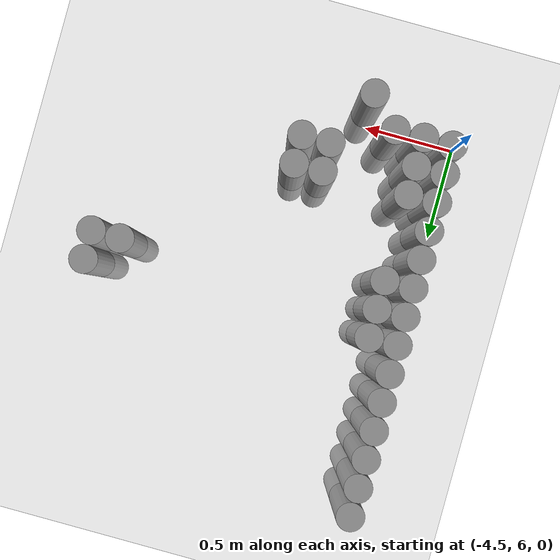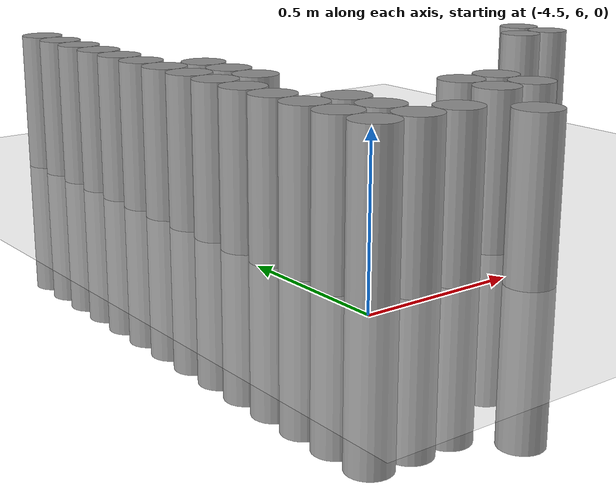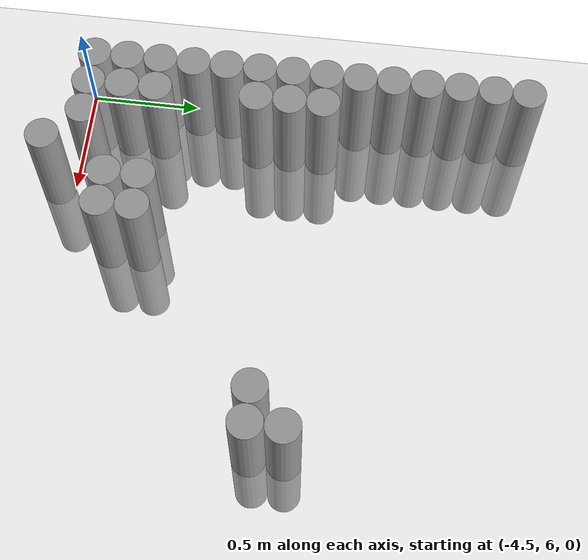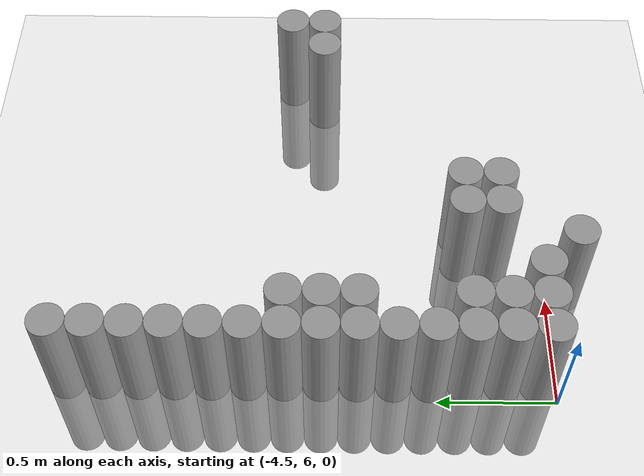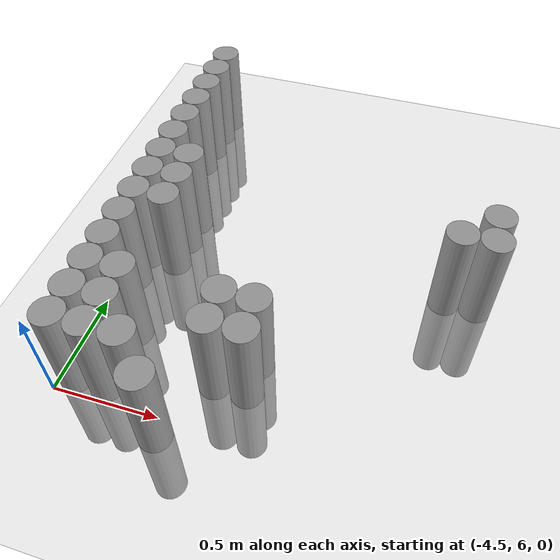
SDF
<sdf version="1.6">
 <world name="default">
  <model name="ground_plane">
   <static>1</static>
   <static>1</static>
   <link name="link">
    <collision name="collision">
     <geometry><plane><normal>0 0 1</normal><size>100 100</size></plane></geometry>
     <surface><friction><ode><mu>100</mu><mu2>50</mu2></ode></friction></surface>
    </collision>
    <visual name="visual">
     <cast_shadows>0</cast_shadows>
     <geometry><plane><normal>0 0 1</normal><size>100 100</size></plane></geometry>
     <material>
      <script><uri>file://media/materials/scripts/gazebo.material</uri><name>Gazebo/Grey</name></script>
     </material>
    </visual>
   </link>
  </model>
  <model name="unit_cylinder_102">
   <static>1</static>
   <pose>-4.425000 6.075000 0.000000 0.000000 0.000000 0.000000</pose>
   <link name="link">
    <inertial>
     <mass>1</mass>
     <inertia><ixx>0.145833</ixx><ixy>0</ixy><ixz>0</ixz><iyy>0.145833</iyy><iyz>0</iyz><izz>0.125</izz></inertia>
    </inertial>
    <collision name="collision">
     <geometry><cylinder><radius>0.075000</radius><length>1</length></cylinder></geometry>
    </collision>
    <visual name="visual">
     <geometry><cylinder><radius>0.075000</radius><length>1</length></cylinder></geometry>
     <material>
      <script><name>Gazebo/Grey</name><uri>file://media/materials/scripts/gazebo.material</uri></script>
     </material>
    </visual>
   </link>
  </model>
  <model name="unit_cylinder_103">
   <static>1</static>
   <pose>-4.425000 6.225000 0.000000 0.000000 0.000000 0.000000</pose>
   <link name="link">
    <inertial>
     <mass>1</mass>
     <inertia><ixx>0.145833</ixx><ixy>0</ixy><ixz>0</ixz><iyy>0.145833</iyy><iyz>0</iyz><izz>0.125</izz></inertia>
    </inertial>
    <collision name="collision">
     <geometry><cylinder><radius>0.075000</radius><length>1</length></cylinder></geometry>
    </collision>
    <visual name="visual">
     <geometry><cylinder><radius>0.075000</radius><length>1</length></cylinder></geometry>
     <material>
      <script><name>Gazebo/Grey</name><uri>file://media/materials/scripts/gazebo.material</uri></script>
     </material>
    </visual>
   </link>
  </model>
  <model name="unit_cylinder_104">
   <static>1</static>
   <pose>-4.425000 6.375000 0.000000 0.000000 0.000000 0.000000</pose>
   <link name="link">
    <inertial>
     <mass>1</mass>
     <inertia><ixx>0.145833</ixx><ixy>0</ixy><ixz>0</ixz><iyy>0.145833</iyy><iyz>0</iyz><izz>0.125</izz></inertia>
    </inertial>
    <collision name="collision">
     <geometry><cylinder><radius>0.075000</radius><length>1</length></cylinder></geometry>
    </collision>
    <visual name="visual">
     <geometry><cylinder><radius>0.075000</radius><length>1</length></cylinder></geometry>
     <material>
      <script><name>Gazebo/Grey</name><uri>file://media/materials/scripts/gazebo.material</uri></script>
     </material>
    </visual>
   </link>
  </model>
  <model name="unit_cylinder_105">
   <static>1</static>
   <pose>-4.425000 6.525000 0.000000 0.000000 0.000000 0.000000</pose>
   <link name="link">
    <inertial>
     <mass>1</mass>
     <inertia><ixx>0.145833</ixx><ixy>0</ixy><ixz>0</ixz><iyy>0.145833</iyy><iyz>0</iyz><izz>0.125</izz></inertia>
    </inertial>
    <collision name="collision">
     <geometry><cylinder><radius>0.075000</radius><length>1</length></cylinder></geometry>
    </collision>
    <visual name="visual">
     <geometry><cylinder><radius>0.075000</radius><length>1</length></cylinder></geometry>
     <material>
      <script><name>Gazebo/Grey</name><uri>file://media/materials/scripts/gazebo.material</uri></script>
     </material>
    </visual>
   </link>
  </model>
  <model name="unit_cylinder_106">
   <static>1</static>
   <pose>-4.425000 6.675000 0.000000 0.000000 0.000000 0.000000</pose>
   <link name="link">
    <inertial>
     <mass>1</mass>
     <inertia><ixx>0.145833</ixx><ixy>0</ixy><ixz>0</ixz><iyy>0.145833</iyy><iyz>0</iyz><izz>0.125</izz></inertia>
    </inertial>
    <collision name="collision">
     <geometry><cylinder><radius>0.075000</radius><length>1</length></cylinder></geometry>
    </collision>
    <visual name="visual">
     <geometry><cylinder><radius>0.075000</radius><length>1</length></cylinder></geometry>
     <material>
      <script><name>Gazebo/Grey</name><uri>file://media/materials/scripts/gazebo.material</uri></script>
     </material>
    </visual>
   </link>
  </model>
  <model name="unit_cylinder_107">
   <static>1</static>
   <pose>-4.425000 6.825000 0.000000 0.000000 0.000000 0.000000</pose>
   <link name="link">
    <inertial>
     <mass>1</mass>
     <inertia><ixx>0.145833</ixx><ixy>0</ixy><ixz>0</ixz><iyy>0.145833</iyy><iyz>0</iyz><izz>0.125</izz></inertia>
    </inertial>
    <collision name="collision">
     <geometry><cylinder><radius>0.075000</radius><length>1</length></cylinder></geometry>
    </collision>
    <visual name="visual">
     <geometry><cylinder><radius>0.075000</radius><length>1</length></cylinder></geometry>
     <material>
      <script><name>Gazebo/Grey</name><uri>file://media/materials/scripts/gazebo.material</uri></script>
     </material>
    </visual>
   </link>
  </model>
  <model name="unit_cylinder_108">
   <static>1</static>
   <pose>-4.425000 6.975000 0.000000 0.000000 0.000000 0.000000</pose>
   <link name="link">
    <inertial>
     <mass>1</mass>
     <inertia><ixx>0.145833</ixx><ixy>0</ixy><ixz>0</ixz><iyy>0.145833</iyy><iyz>0</iyz><izz>0.125</izz></inertia>
    </inertial>
    <collision name="collision">
     <geometry><cylinder><radius>0.075000</radius><length>1</length></cylinder></geometry>
    </collision>
    <visual name="visual">
     <geometry><cylinder><radius>0.075000</radius><length>1</length></cylinder></geometry>
     <material>
      <script><name>Gazebo/Grey</name><uri>file://media/materials/scripts/gazebo.material</uri></script>
     </material>
    </visual>
   </link>
  </model>
  <model name="unit_cylinder_109">
   <static>1</static>
   <pose>-4.425000 7.125000 0.000000 0.000000 0.000000 0.000000</pose>
   <link name="link">
    <inertial>
     <mass>1</mass>
     <inertia><ixx>0.145833</ixx><ixy>0</ixy><ixz>0</ixz><iyy>0.145833</iyy><iyz>0</iyz><izz>0.125</izz></inertia>
    </inertial>
    <collision name="collision">
     <geometry><cylinder><radius>0.075000</radius><length>1</length></cylinder></geometry>
    </collision>
    <visual name="visual">
     <geometry><cylinder><radius>0.075000</radius><length>1</length></cylinder></geometry>
     <material>
      <script><name>Gazebo/Grey</name><uri>file://media/materials/scripts/gazebo.material</uri></script>
     </material>
    </visual>
   </link>
  </model>
  <model name="unit_cylinder_110">
   <static>1</static>
   <pose>-4.425000 7.275000 0.000000 0.000000 0.000000 0.000000</pose>
   <link name="link">
    <inertial>
     <mass>1</mass>
     <inertia><ixx>0.145833</ixx><ixy>0</ixy><ixz>0</ixz><iyy>0.145833</iyy><iyz>0</iyz><izz>0.125</izz></inertia>
    </inertial>
    <collision name="collision">
     <geometry><cylinder><radius>0.075000</radius><length>1</length></cylinder></geometry>
    </collision>
    <visual name="visual">
     <geometry><cylinder><radius>0.075000</radius><length>1</length></cylinder></geometry>
     <material>
      <script><name>Gazebo/Grey</name><uri>file://media/materials/scripts/gazebo.material</uri></script>
     </material>
    </visual>
   </link>
  </model>
  <model name="unit_cylinder_111">
   <static>1</static>
   <pose>-4.425000 7.425000 0.000000 0.000000 0.000000 0.000000</pose>
   <link name="link">
    <inertial>
     <mass>1</mass>
     <inertia><ixx>0.145833</ixx><ixy>0</ixy><ixz>0</ixz><iyy>0.145833</iyy><iyz>0</iyz><izz>0.125</izz></inertia>
    </inertial>
    <collision name="collision">
     <geometry><cylinder><radius>0.075000</radius><length>1</length></cylinder></geometry>
    </collision>
    <visual name="visual">
     <geometry><cylinder><radius>0.075000</radius><length>1</length></cylinder></geometry>
     <material>
      <script><name>Gazebo/Grey</name><uri>file://media/materials/scripts/gazebo.material</uri></script>
     </material>
    </visual>
   </link>
  </model>
  <model name="unit_cylinder_112">
   <static>1</static>
   <pose>-4.425000 7.575000 0.000000 0.000000 0.000000 0.000000</pose>
   <link name="link">
    <inertial>
     <mass>1</mass>
     <inertia><ixx>0.145833</ixx><ixy>0</ixy><ixz>0</ixz><iyy>0.145833</iyy><iyz>0</iyz><izz>0.125</izz></inertia>
    </inertial>
    <collision name="collision">
     <geometry><cylinder><radius>0.075000</radius><length>1</length></cylinder></geometry>
    </collision>
    <visual name="visual">
     <geometry><cylinder><radius>0.075000</radius><length>1</length></cylinder></geometry>
     <material>
      <script><name>Gazebo/Grey</name><uri>file://media/materials/scripts/gazebo.material</uri></script>
     </material>
    </visual>
   </link>
  </model>
  <model name="unit_cylinder_113">
   <static>1</static>
   <pose>-4.425000 7.725000 0.000000 0.000000 0.000000 0.000000</pose>
   <link name="link">
    <inertial>
     <mass>1</mass>
     <inertia><ixx>0.145833</ixx><ixy>0</ixy><ixz>0</ixz><iyy>0.145833</iyy><iyz>0</iyz><izz>0.125</izz></inertia>
    </inertial>
    <collision name="collision">
     <geometry><cylinder><radius>0.075000</radius><length>1</length></cylinder></geometry>
    </collision>
    <visual name="visual">
     <geometry><cylinder><radius>0.075000</radius><length>1</length></cylinder></geometry>
     <material>
      <script><name>Gazebo/Grey</name><uri>file://media/materials/scripts/gazebo.material</uri></script>
     </material>
    </visual>
   </link>
  </model>
  <model name="unit_cylinder_114">
   <static>1</static>
   <pose>-4.425000 7.875000 0.000000 0.000000 0.000000 0.000000</pose>
   <link name="link">
    <inertial>
     <mass>1</mass>
     <inertia><ixx>0.145833</ixx><ixy>0</ixy><ixz>0</ixz><iyy>0.145833</iyy><iyz>0</iyz><izz>0.125</izz></inertia>
    </inertial>
    <collision name="collision">
     <geometry><cylinder><radius>0.075000</radius><length>1</length></cylinder></geometry>
    </collision>
    <visual name="visual">
     <geometry><cylinder><radius>0.075000</radius><length>1</length></cylinder></geometry>
     <material>
      <script><name>Gazebo/Grey</name><uri>file://media/materials/scripts/gazebo.material</uri></script>
     </material>
    </visual>
   </link>
  </model>
  <model name="unit_cylinder_115">
   <static>1</static>
   <pose>-4.425000 8.025000 0.000000 0.000000 0.000000 0.000000</pose>
   <link name="link">
    <inertial>
     <mass>1</mass>
     <inertia><ixx>0.145833</ixx><ixy>0</ixy><ixz>0</ixz><iyy>0.145833</iyy><iyz>0</iyz><izz>0.125</izz></inertia>
    </inertial>
    <collision name="collision">
     <geometry><cylinder><radius>0.075000</radius><length>1</length></cylinder></geometry>
    </collision>
    <visual name="visual">
     <geometry><cylinder><radius>0.075000</radius><length>1</length></cylinder></geometry>
     <material>
      <script><name>Gazebo/Grey</name><uri>file://media/materials/scripts/gazebo.material</uri></script>
     </material>
    </visual>
   </link>
  </model>
  <model name="unit_cylinder_128">
   <static>1</static>
   <pose>-4.275000 6.075000 0.000000 0.000000 0.000000 0.000000</pose>
   <link name="link">
    <inertial>
     <mass>1</mass>
     <inertia><ixx>0.145833</ixx><ixy>0</ixy><ixz>0</ixz><iyy>0.145833</iyy><iyz>0</iyz><izz>0.125</izz></inertia>
    </inertial>
    <collision name="collision">
     <geometry><cylinder><radius>0.075000</radius><length>1</length></cylinder></geometry>
    </collision>
    <visual name="visual">
     <geometry><cylinder><radius>0.075000</radius><length>1</length></cylinder></geometry>
     <material>
      <script><name>Gazebo/Grey</name><uri>file://media/materials/scripts/gazebo.material</uri></script>
     </material>
    </visual>
   </link>
  </model>
  <model name="unit_cylinder_129">
   <static>1</static>
   <pose>-4.275000 6.225000 0.000000 0.000000 0.000000 0.000000</pose>
   <link name="link">
    <inertial>
     <mass>1</mass>
     <inertia><ixx>0.145833</ixx><ixy>0</ixy><ixz>0</ixz><iyy>0.145833</iyy><iyz>0</iyz><izz>0.125</izz></inertia>
    </inertial>
    <collision name="collision">
     <geometry><cylinder><radius>0.075000</radius><length>1</length></cylinder></geometry>
    </collision>
    <visual name="visual">
     <geometry><cylinder><radius>0.075000</radius><length>1</length></cylinder></geometry>
     <material>
      <script><name>Gazebo/Grey</name><uri>file://media/materials/scripts/gazebo.material</uri></script>
     </material>
    </visual>
   </link>
  </model>
  <model name="unit_cylinder_130">
   <static>1</static>
   <pose>-4.275000 6.375000 0.000000 0.000000 0.000000 0.000000</pose>
   <link name="link">
    <inertial>
     <mass>1</mass>
     <inertia><ixx>0.145833</ixx><ixy>0</ixy><ixz>0</ixz><iyy>0.145833</iyy><iyz>0</iyz><izz>0.125</izz></inertia>
    </inertial>
    <collision name="collision">
     <geometry><cylinder><radius>0.075000</radius><length>1</length></cylinder></geometry>
    </collision>
    <visual name="visual">
     <geometry><cylinder><radius>0.075000</radius><length>1</length></cylinder></geometry>
     <material>
      <script><name>Gazebo/Grey</name><uri>file://media/materials/scripts/gazebo.material</uri></script>
     </material>
    </visual>
   </link>
  </model>
  <model name="unit_cylinder_131">
   <static>1</static>
   <pose>-4.275000 6.825000 0.000000 0.000000 0.000000 0.000000</pose>
   <link name="link">
    <inertial>
     <mass>1</mass>
     <inertia><ixx>0.145833</ixx><ixy>0</ixy><ixz>0</ixz><iyy>0.145833</iyy><iyz>0</iyz><izz>0.125</izz></inertia>
    </inertial>
    <collision name="collision">
     <geometry><cylinder><radius>0.075000</radius><length>1</length></cylinder></geometry>
    </collision>
    <visual name="visual">
     <geometry><cylinder><radius>0.075000</radius><length>1</length></cylinder></geometry>
     <material>
      <script><name>Gazebo/Grey</name><uri>file://media/materials/scripts/gazebo.material</uri></script>
     </material>
    </visual>
   </link>
  </model>
  <model name="unit_cylinder_132">
   <static>1</static>
   <pose>-4.275000 6.975000 0.000000 0.000000 0.000000 0.000000</pose>
   <link name="link">
    <inertial>
     <mass>1</mass>
     <inertia><ixx>0.145833</ixx><ixy>0</ixy><ixz>0</ixz><iyy>0.145833</iyy><iyz>0</iyz><izz>0.125</izz></inertia>
    </inertial>
    <collision name="collision">
     <geometry><cylinder><radius>0.075000</radius><length>1</length></cylinder></geometry>
    </collision>
    <visual name="visual">
     <geometry><cylinder><radius>0.075000</radius><length>1</length></cylinder></geometry>
     <material>
      <script><name>Gazebo/Grey</name><uri>file://media/materials/scripts/gazebo.material</uri></script>
     </material>
    </visual>
   </link>
  </model>
  <model name="unit_cylinder_133">
   <static>1</static>
   <pose>-4.275000 7.125000 0.000000 0.000000 0.000000 0.000000</pose>
   <link name="link">
    <inertial>
     <mass>1</mass>
     <inertia><ixx>0.145833</ixx><ixy>0</ixy><ixz>0</ixz><iyy>0.145833</iyy><iyz>0</iyz><izz>0.125</izz></inertia>
    </inertial>
    <collision name="collision">
     <geometry><cylinder><radius>0.075000</radius><length>1</length></cylinder></geometry>
    </collision>
    <visual name="visual">
     <geometry><cylinder><radius>0.075000</radius><length>1</length></cylinder></geometry>
     <material>
      <script><name>Gazebo/Grey</name><uri>file://media/materials/scripts/gazebo.material</uri></script>
     </material>
    </visual>
   </link>
  </model>
  <model name="unit_cylinder_147">
   <static>1</static>
   <pose>-4.125000 6.075000 0.000000 0.000000 0.000000 0.000000</pose>
   <link name="link">
    <inertial>
     <mass>1</mass>
     <inertia><ixx>0.145833</ixx><ixy>0</ixy><ixz>0</ixz><iyy>0.145833</iyy><iyz>0</iyz><izz>0.125</izz></inertia>
    </inertial>
    <collision name="collision">
     <geometry><cylinder><radius>0.075000</radius><length>1</length></cylinder></geometry>
    </collision>
    <visual name="visual">
     <geometry><cylinder><radius>0.075000</radius><length>1</length></cylinder></geometry>
     <material>
      <script><name>Gazebo/Grey</name><uri>file://media/materials/scripts/gazebo.material</uri></script>
     </material>
    </visual>
   </link>
  </model>
  <model name="unit_cylinder_150">
   <static>1</static>
   <pose>-3.975000 5.925000 0.000000 0.000000 0.000000 0.000000</pose>
   <link name="link">
    <inertial>
     <mass>1</mass>
     <inertia><ixx>0.145833</ixx><ixy>0</ixy><ixz>0</ixz><iyy>0.145833</iyy><iyz>0</iyz><izz>0.125</izz></inertia>
    </inertial>
    <collision name="collision">
     <geometry><cylinder><radius>0.075000</radius><length>1</length></cylinder></geometry>
    </collision>
    <visual name="visual">
     <geometry><cylinder><radius>0.075000</radius><length>1</length></cylinder></geometry>
     <material>
      <script><name>Gazebo/Grey</name><uri>file://media/materials/scripts/gazebo.material</uri></script>
     </material>
    </visual>
   </link>
  </model>
  <model name="unit_cylinder_152">
   <static>1</static>
   <pose>-3.825000 6.225000 0.000000 0.000000 0.000000 0.000000</pose>
   <link name="link">
    <inertial>
     <mass>1</mass>
     <inertia><ixx>0.145833</ixx><ixy>0</ixy><ixz>0</ixz><iyy>0.145833</iyy><iyz>0</iyz><izz>0.125</izz></inertia>
    </inertial>
    <collision name="collision">
     <geometry><cylinder><radius>0.075000</radius><length>1</length></cylinder></geometry>
    </collision>
    <visual name="visual">
     <geometry><cylinder><radius>0.075000</radius><length>1</length></cylinder></geometry>
     <material>
      <script><name>Gazebo/Grey</name><uri>file://media/materials/scripts/gazebo.material</uri></script>
     </material>
    </visual>
   </link>
  </model>
  <model name="unit_cylinder_153">
   <static>1</static>
   <pose>-3.825000 6.375000 0.000000 0.000000 0.000000 0.000000</pose>
   <link name="link">
    <inertial>
     <mass>1</mass>
     <inertia><ixx>0.145833</ixx><ixy>0</ixy><ixz>0</ixz><iyy>0.145833</iyy><iyz>0</iyz><izz>0.125</izz></inertia>
    </inertial>
    <collision name="collision">
     <geometry><cylinder><radius>0.075000</radius><length>1</length></cylinder></geometry>
    </collision>
    <visual name="visual">
     <geometry><cylinder><radius>0.075000</radius><length>1</length></cylinder></geometry>
     <material>
      <script><name>Gazebo/Grey</name><uri>file://media/materials/scripts/gazebo.material</uri></script>
     </material>
    </visual>
   </link>
  </model>
  <model name="unit_cylinder_154">
   <static>1</static>
   <pose>-3.675000 6.225000 0.000000 0.000000 0.000000 0.000000</pose>
   <link name="link">
    <inertial>
     <mass>1</mass>
     <inertia><ixx>0.145833</ixx><ixy>0</ixy><ixz>0</ixz><iyy>0.145833</iyy><iyz>0</iyz><izz>0.125</izz></inertia>
    </inertial>
    <collision name="collision">
     <geometry><cylinder><radius>0.075000</radius><length>1</length></cylinder></geometry>
    </collision>
    <visual name="visual">
     <geometry><cylinder><radius>0.075000</radius><length>1</length></cylinder></geometry>
     <material>
      <script><name>Gazebo/Grey</name><uri>file://media/materials/scripts/gazebo.material</uri></script>
     </material>
    </visual>
   </link>
  </model>
  <model name="unit_cylinder_155">
   <static>1</static>
   <pose>-3.675000 6.375000 0.000000 0.000000 0.000000 0.000000</pose>
   <link name="link">
    <inertial>
     <mass>1</mass>
     <inertia><ixx>0.145833</ixx><ixy>0</ixy><ixz>0</ixz><iyy>0.145833</iyy><iyz>0</iyz><izz>0.125</izz></inertia>
    </inertial>
    <collision name="collision">
     <geometry><cylinder><radius>0.075000</radius><length>1</length></cylinder></geometry>
    </collision>
    <visual name="visual">
     <geometry><cylinder><radius>0.075000</radius><length>1</length></cylinder></geometry>
     <material>
      <script><name>Gazebo/Grey</name><uri>file://media/materials/scripts/gazebo.material</uri></script>
     </material>
    </visual>
   </link>
  </model>
  <model name="unit_cylinder_159">
   <static>1</static>
   <pose>-2.925000 6.975000 0.000000 0.000000 0.000000 0.000000</pose>
   <link name="link">
    <inertial>
     <mass>1</mass>
     <inertia><ixx>0.145833</ixx><ixy>0</ixy><ixz>0</ixz><iyy>0.145833</iyy><iyz>0</iyz><izz>0.125</izz></inertia>
    </inertial>
    <collision name="collision">
     <geometry><cylinder><radius>0.075000</radius><length>1</length></cylinder></geometry>
    </collision>
    <visual name="visual">
     <geometry><cylinder><radius>0.075000</radius><length>1</length></cylinder></geometry>
     <material>
      <script><name>Gazebo/Grey</name><uri>file://media/materials/scripts/gazebo.material</uri></script>
     </material>
    </visual>
   </link>
  </model>
  <model name="unit_cylinder_160">
   <static>1</static>
   <pose>-2.775000 6.975000 0.000000 0.000000 0.000000 0.000000</pose>
   <link name="link">
    <inertial>
     <mass>1</mass>
     <inertia><ixx>0.145833</ixx><ixy>0</ixy><ixz>0</ixz><iyy>0.145833</iyy><iyz>0</iyz><izz>0.125</izz></inertia>
    </inertial>
    <collision name="collision">
     <geometry><cylinder><radius>0.075000</radius><length>1</length></cylinder></geometry>
    </collision>
    <visual name="visual">
     <geometry><cylinder><radius>0.075000</radius><length>1</length></cylinder></geometry>
     <material>
      <script><name>Gazebo/Grey</name><uri>file://media/materials/scripts/gazebo.material</uri></script>
     </material>
    </visual>
   </link>
  </model>
  <model name="unit_cylinder_161">
   <static>1</static>
   <pose>-2.775000 7.125000 0.000000 0.000000 0.000000 0.000000</pose>
   <link name="link">
    <inertial>
     <mass>1</mass>
     <inertia><ixx>0.145833</ixx><ixy>0</ixy><ixz>0</ixz><iyy>0.145833</iyy><iyz>0</iyz><izz>0.125</izz></inertia>
    </inertial>
    <collision name="collision">
     <geometry><cylinder><radius>0.075000</radius><length>1</length></cylinder></geometry>
    </collision>
    <visual name="visual">
     <geometry><cylinder><radius>0.075000</radius><length>1</length></cylinder></geometry>
     <material>
      <script><name>Gazebo/Grey</name><uri>file://media/materials/scripts/gazebo.material</uri></script>
     </material>
    </visual>
   </link>
  </model>
 </world>
</sdf>
